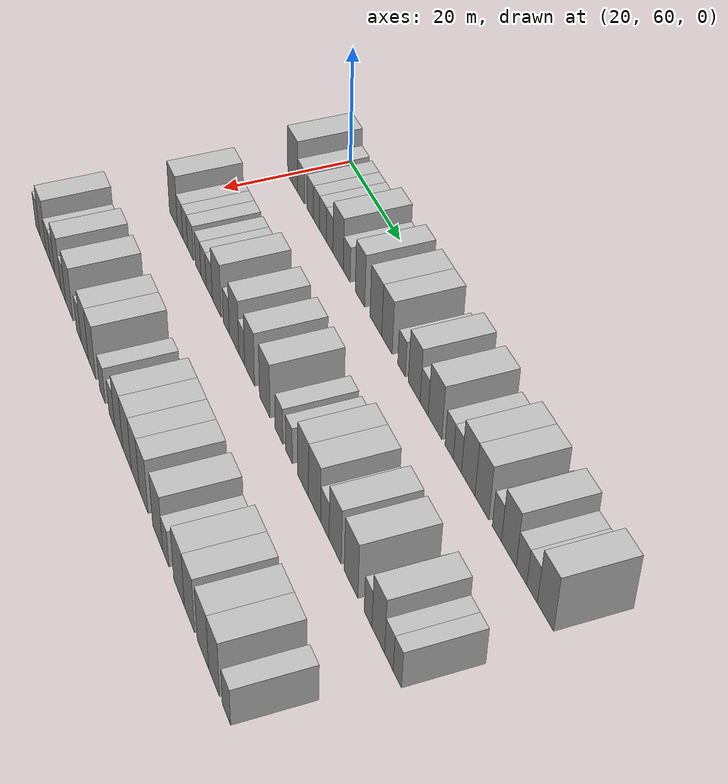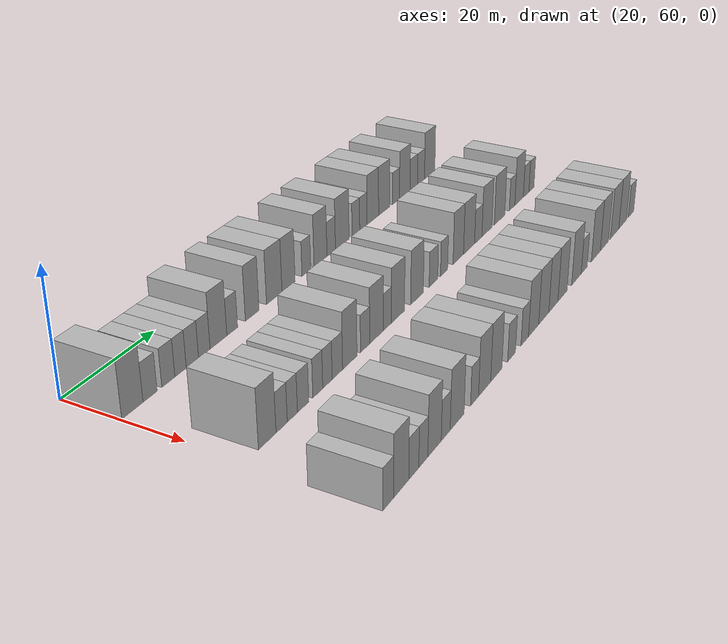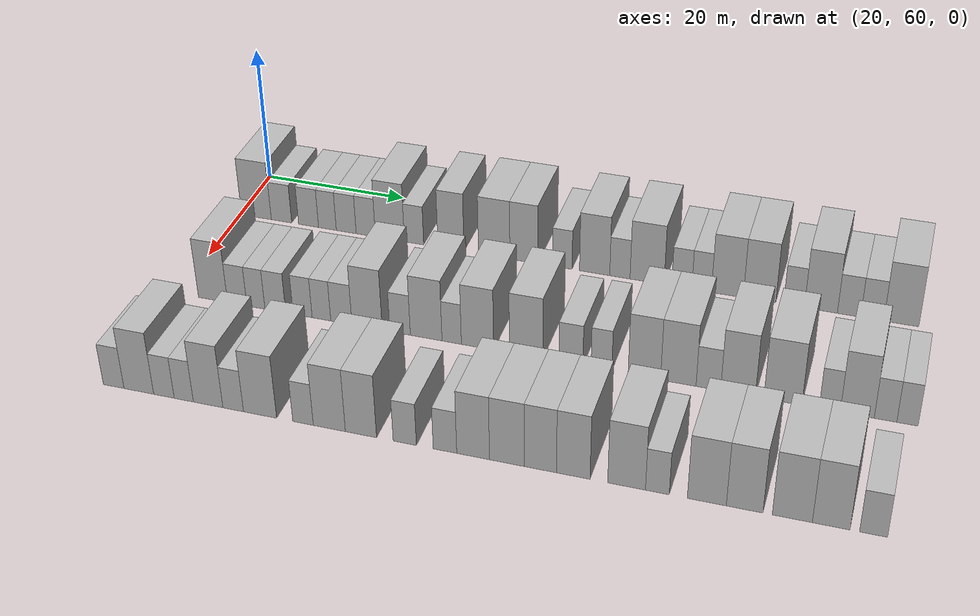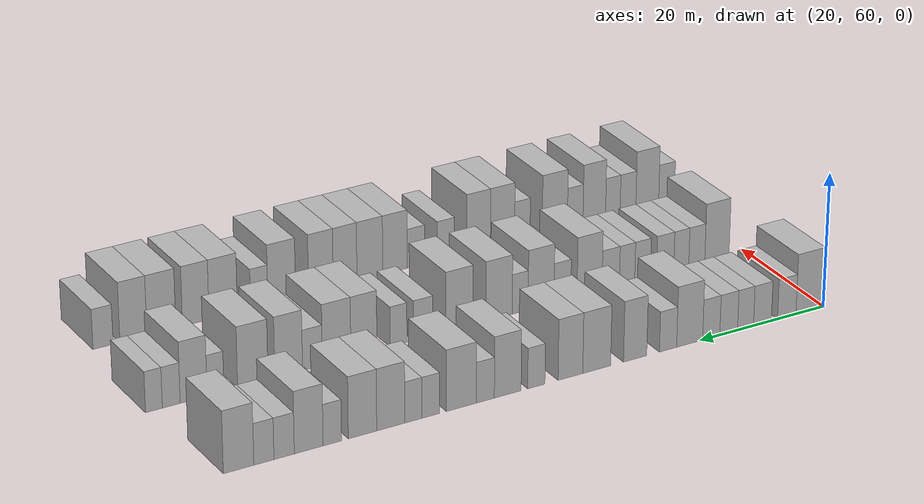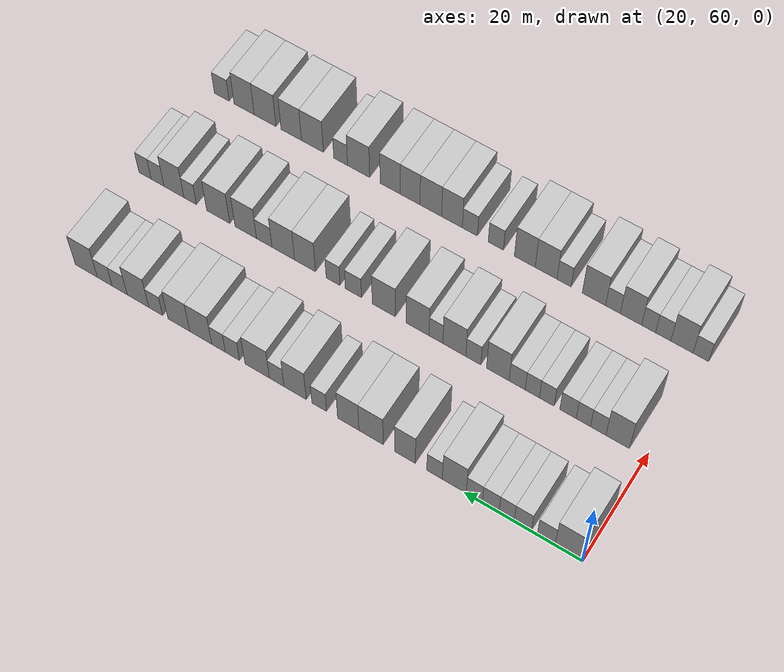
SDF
<sdf version="1.6">
 <world name="default">
  <model name="building_110">
   <static>1</static>
   <pose>25.0000 62.3470 0 0.000000 0.000000 0.000000</pose>
   <link name="link">
    <pose>0 0 4.50 0 0 0</pose>
    <collision name="collision"><geometry><box><size>10.0000 4.3743 9.0000</size></box></geometry></collision>
    <visual name="visual">
     <cast_shadows>0</cast_shadows>
     <geometry><box><size>10.0000 4.3743 9.0000</size></box></geometry>
     <material>
      <script>
       <uri>model://HANNAS_wall/materials/scripts</uri>
       <uri>model://HANNAS_wall/materials/textures</uri>
       <name>vrc/HANNAS_wall</name>
      </script>
     </material>
    </visual>
   </link>
  </model>
  <model name="building_111">
   <static>1</static>
   <pose>25.0000 66.0311 0 0.000000 0.000000 0.000000</pose>
   <link name="link">
    <pose>0 0 3.00 0 0 0</pose>
    <collision name="collision"><geometry><box><size>10.0000 2.9939 6.0000</size></box></geometry></collision>
    <visual name="visual">
     <cast_shadows>0</cast_shadows>
     <geometry><box><size>10.0000 2.9939 6.0000</size></box></geometry>
     <material>
      <script>
       <uri>model://HANNAS_wall/materials/scripts</uri>
       <uri>model://HANNAS_wall/materials/textures</uri>
       <name>vrc/HANNAS_wall</name>
      </script>
     </material>
    </visual>
   </link>
  </model>
  <model name="building_112">
   <static>1</static>
   <pose>25.0000 69.9741 0 0.000000 0.000000 0.000000</pose>
   <link name="link">
    <pose>0 0 3.00 0 0 0</pose>
    <collision name="collision"><geometry><box><size>10.0000 2.8922 6.0000</size></box></geometry></collision>
    <visual name="visual">
     <cast_shadows>0</cast_shadows>
     <geometry><box><size>10.0000 2.8922 6.0000</size></box></geometry>
     <material>
      <script>
       <uri>model://HANNAS_wall/materials/scripts</uri>
       <uri>model://HANNAS_wall/materials/textures</uri>
       <name>vrc/HANNAS_wall</name>
      </script>
     </material>
    </visual>
   </link>
  </model>
  <model name="building_113">
   <static>1</static>
   <pose>25.0000 72.7014 0 0.000000 0.000000 0.000000</pose>
   <link name="link">
    <pose>0 0 3.00 0 0 0</pose>
    <collision name="collision"><geometry><box><size>10.0000 2.5624 6.0000</size></box></geometry></collision>
    <visual name="visual">
     <cast_shadows>0</cast_shadows>
     <geometry><box><size>10.0000 2.5624 6.0000</size></box></geometry>
     <material>
      <script>
       <uri>model://HANNAS_wall/materials/scripts</uri>
       <uri>model://HANNAS_wall/materials/textures</uri>
       <name>vrc/HANNAS_wall</name>
      </script>
     </material>
    </visual>
   </link>
  </model>
  <model name="building_114">
   <static>1</static>
   <pose>25.0000 75.4080 0 0.000000 0.000000 0.000000</pose>
   <link name="link">
    <pose>0 0 3.00 0 0 0</pose>
    <collision name="collision"><geometry><box><size>10.0000 2.8508 6.0000</size></box></geometry></collision>
    <visual name="visual">
     <cast_shadows>0</cast_shadows>
     <geometry><box><size>10.0000 2.8508 6.0000</size></box></geometry>
     <material>
      <script>
       <uri>model://HANNAS_wall/materials/scripts</uri>
       <uri>model://HANNAS_wall/materials/textures</uri>
       <name>vrc/HANNAS_wall</name>
      </script>
     </material>
    </visual>
   </link>
  </model>
  <model name="building_115">
   <static>1</static>
   <pose>25.0000 78.2053 0 0.000000 0.000000 0.000000</pose>
   <link name="link">
    <pose>0 0 3.00 0 0 0</pose>
    <collision name="collision"><geometry><box><size>10.0000 2.7438 6.0000</size></box></geometry></collision>
    <visual name="visual">
     <cast_shadows>0</cast_shadows>
     <geometry><box><size>10.0000 2.7438 6.0000</size></box></geometry>
     <material>
      <script>
       <uri>model://HANNAS_wall/materials/scripts</uri>
       <uri>model://HANNAS_wall/materials/textures</uri>
       <name>vrc/HANNAS_wall</name>
      </script>
     </material>
    </visual>
   </link>
  </model>
  <model name="building_116">
   <static>1</static>
   <pose>25.0000 81.6356 0 0.000000 0.000000 0.000000</pose>
   <link name="link">
    <pose>0 0 4.50 0 0 0</pose>
    <collision name="collision"><geometry><box><size>10.0000 4.1169 9.0000</size></box></geometry></collision>
    <visual name="visual">
     <cast_shadows>0</cast_shadows>
     <geometry><box><size>10.0000 4.1169 9.0000</size></box></geometry>
     <material>
      <script>
       <uri>model://HANNAS_wall/materials/scripts</uri>
       <uri>model://HANNAS_wall/materials/textures</uri>
       <name>vrc/HANNAS_wall</name>
      </script>
     </material>
    </visual>
   </link>
  </model>
  <model name="building_117">
   <static>1</static>
   <pose>25.0000 85.0522 0 0.000000 0.000000 0.000000</pose>
   <link name="link">
    <pose>0 0 3.00 0 0 0</pose>
    <collision name="collision"><geometry><box><size>10.0000 2.7163 6.0000</size></box></geometry></collision>
    <visual name="visual">
     <cast_shadows>0</cast_shadows>
     <geometry><box><size>10.0000 2.7163 6.0000</size></box></geometry>
     <material>
      <script>
       <uri>model://HANNAS_wall/materials/scripts</uri>
       <uri>model://HANNAS_wall/materials/textures</uri>
       <name>vrc/HANNAS_wall</name>
      </script>
     </material>
    </visual>
   </link>
  </model>
  <model name="building_118">
   <static>1</static>
   <pose>25.0000 90.2256 0 0.000000 0.000000 0.000000</pose>
   <link name="link">
    <pose>0 0 4.50 0 0 0</pose>
    <collision name="collision"><geometry><box><size>10.0000 3.6306 9.0000</size></box></geometry></collision>
    <visual name="visual">
     <cast_shadows>0</cast_shadows>
     <geometry><box><size>10.0000 3.6306 9.0000</size></box></geometry>
     <material>
      <script>
       <uri>model://HANNAS_wall/materials/scripts</uri>
       <uri>model://HANNAS_wall/materials/textures</uri>
       <name>vrc/HANNAS_wall</name>
      </script>
     </material>
    </visual>
   </link>
  </model>
  <model name="building_119">
   <static>1</static>
   <pose>25.0000 96.2003 0 0.000000 0.000000 0.000000</pose>
   <link name="link">
    <pose>0 0 4.50 0 0 0</pose>
    <collision name="collision"><geometry><box><size>10.0000 4.3188 9.0000</size></box></geometry></collision>
    <visual name="visual">
     <cast_shadows>0</cast_shadows>
     <geometry><box><size>10.0000 4.3188 9.0000</size></box></geometry>
     <material>
      <script>
       <uri>model://HANNAS_wall/materials/scripts</uri>
       <uri>model://HANNAS_wall/materials/textures</uri>
       <name>vrc/HANNAS_wall</name>
      </script>
     </material>
    </visual>
   </link>
  </model>
  <model name="building_120">
   <static>1</static>
   <pose>25.0000 100.2552 0 0.000000 0.000000 0.000000</pose>
   <link name="link">
    <pose>0 0 4.50 0 0 0</pose>
    <collision name="collision"><geometry><box><size>10.0000 3.7910 9.0000</size></box></geometry></collision>
    <visual name="visual">
     <cast_shadows>0</cast_shadows>
     <geometry><box><size>10.0000 3.7910 9.0000</size></box></geometry>
     <material>
      <script>
       <uri>model://HANNAS_wall/materials/scripts</uri>
       <uri>model://HANNAS_wall/materials/textures</uri>
       <name>vrc/HANNAS_wall</name>
      </script>
     </material>
    </visual>
   </link>
  </model>
  <model name="building_121">
   <static>1</static>
   <pose>25.0000 105.4711 0 0.000000 0.000000 0.000000</pose>
   <link name="link">
    <pose>0 0 3.00 0 0 0</pose>
    <collision name="collision"><geometry><box><size>10.0000 2.6407 6.0000</size></box></geometry></collision>
    <visual name="visual">
     <cast_shadows>0</cast_shadows>
     <geometry><box><size>10.0000 2.6407 6.0000</size></box></geometry>
     <material>
      <script>
       <uri>model://HANNAS_wall/materials/scripts</uri>
       <uri>model://HANNAS_wall/materials/textures</uri>
       <name>vrc/HANNAS_wall</name>
      </script>
     </material>
    </visual>
   </link>
  </model>
  <model name="building_122">
   <static>1</static>
   <pose>25.0000 109.8108 0 0.000000 0.000000 0.000000</pose>
   <link name="link">
    <pose>0 0 4.50 0 0 0</pose>
    <collision name="collision"><geometry><box><size>10.0000 4.0388 9.0000</size></box></geometry></collision>
    <visual name="visual">
     <cast_shadows>0</cast_shadows>
     <geometry><box><size>10.0000 4.0388 9.0000</size></box></geometry>
     <material>
      <script>
       <uri>model://HANNAS_wall/materials/scripts</uri>
       <uri>model://HANNAS_wall/materials/textures</uri>
       <name>vrc/HANNAS_wall</name>
      </script>
     </material>
    </visual>
   </link>
  </model>
  <model name="building_123">
   <static>1</static>
   <pose>25.0000 113.1750 0 0.000000 0.000000 0.000000</pose>
   <link name="link">
    <pose>0 0 3.00 0 0 0</pose>
    <collision name="collision"><geometry><box><size>10.0000 2.6894 6.0000</size></box></geometry></collision>
    <visual name="visual">
     <cast_shadows>0</cast_shadows>
     <geometry><box><size>10.0000 2.6894 6.0000</size></box></geometry>
     <material>
      <script>
       <uri>model://HANNAS_wall/materials/scripts</uri>
       <uri>model://HANNAS_wall/materials/textures</uri>
       <name>vrc/HANNAS_wall</name>
      </script>
     </material>
    </visual>
   </link>
  </model>
  <model name="building_124">
   <static>1</static>
   <pose>25.0000 116.7616 0 0.000000 0.000000 0.000000</pose>
   <link name="link">
    <pose>0 0 4.50 0 0 0</pose>
    <collision name="collision"><geometry><box><size>10.0000 4.4839 9.0000</size></box></geometry></collision>
    <visual name="visual">
     <cast_shadows>0</cast_shadows>
     <geometry><box><size>10.0000 4.4839 9.0000</size></box></geometry>
     <material>
      <script>
       <uri>model://HANNAS_wall/materials/scripts</uri>
       <uri>model://HANNAS_wall/materials/textures</uri>
       <name>vrc/HANNAS_wall</name>
      </script>
     </material>
    </visual>
   </link>
  </model>
  <model name="building_125">
   <static>1</static>
   <pose>25.0000 121.3159 0 0.000000 0.000000 0.000000</pose>
   <link name="link">
    <pose>0 0 3.00 0 0 0</pose>
    <collision name="collision"><geometry><box><size>10.0000 2.6246 6.0000</size></box></geometry></collision>
    <visual name="visual">
     <cast_shadows>0</cast_shadows>
     <geometry><box><size>10.0000 2.6246 6.0000</size></box></geometry>
     <material>
      <script>
       <uri>model://HANNAS_wall/materials/scripts</uri>
       <uri>model://HANNAS_wall/materials/textures</uri>
       <name>vrc/HANNAS_wall</name>
      </script>
     </material>
    </visual>
   </link>
  </model>
  <model name="building_126">
   <static>1</static>
   <pose>25.0000 123.8947 0 0.000000 0.000000 0.000000</pose>
   <link name="link">
    <pose>0 0 3.00 0 0 0</pose>
    <collision name="collision"><geometry><box><size>10.0000 2.5328 6.0000</size></box></geometry></collision>
    <visual name="visual">
     <cast_shadows>0</cast_shadows>
     <geometry><box><size>10.0000 2.5328 6.0000</size></box></geometry>
     <material>
      <script>
       <uri>model://HANNAS_wall/materials/scripts</uri>
       <uri>model://HANNAS_wall/materials/textures</uri>
       <name>vrc/HANNAS_wall</name>
      </script>
     </material>
    </visual>
   </link>
  </model>
  <model name="building_127">
   <static>1</static>
   <pose>25.0000 127.2139 0 0.000000 0.000000 0.000000</pose>
   <link name="link">
    <pose>0 0 4.50 0 0 0</pose>
    <collision name="collision"><geometry><box><size>10.0000 4.1057 9.0000</size></box></geometry></collision>
    <visual name="visual">
     <cast_shadows>0</cast_shadows>
     <geometry><box><size>10.0000 4.1057 9.0000</size></box></geometry>
     <material>
      <script>
       <uri>model://HANNAS_wall/materials/scripts</uri>
       <uri>model://HANNAS_wall/materials/textures</uri>
       <name>vrc/HANNAS_wall</name>
      </script>
     </material>
    </visual>
   </link>
  </model>
  <model name="building_128">
   <static>1</static>
   <pose>25.0000 131.3352 0 0.000000 0.000000 0.000000</pose>
   <link name="link">
    <pose>0 0 4.50 0 0 0</pose>
    <collision name="collision"><geometry><box><size>10.0000 4.1368 9.0000</size></box></geometry></collision>
    <visual name="visual">
     <cast_shadows>0</cast_shadows>
     <geometry><box><size>10.0000 4.1368 9.0000</size></box></geometry>
     <material>
      <script>
       <uri>model://HANNAS_wall/materials/scripts</uri>
       <uri>model://HANNAS_wall/materials/textures</uri>
       <name>vrc/HANNAS_wall</name>
      </script>
     </material>
    </visual>
   </link>
  </model>
  <model name="building_129">
   <static>1</static>
   <pose>25.0000 135.7225 0 0.000000 0.000000 0.000000</pose>
   <link name="link">
    <pose>0 0 3.00 0 0 0</pose>
    <collision name="collision"><geometry><box><size>10.0000 2.6379 6.0000</size></box></geometry></collision>
    <visual name="visual">
     <cast_shadows>0</cast_shadows>
     <geometry><box><size>10.0000 2.6379 6.0000</size></box></geometry>
     <material>
      <script>
       <uri>model://HANNAS_wall/materials/scripts</uri>
       <uri>model://HANNAS_wall/materials/textures</uri>
       <name>vrc/HANNAS_wall</name>
      </script>
     </material>
    </visual>
   </link>
  </model>
  <model name="building_130">
   <static>1</static>
   <pose>25.0000 139.1090 0 0.000000 0.000000 0.000000</pose>
   <link name="link">
    <pose>0 0 4.50 0 0 0</pose>
    <collision name="collision"><geometry><box><size>10.0000 4.1351 9.0000</size></box></geometry></collision>
    <visual name="visual">
     <cast_shadows>0</cast_shadows>
     <geometry><box><size>10.0000 4.1351 9.0000</size></box></geometry>
     <material>
      <script>
       <uri>model://HANNAS_wall/materials/scripts</uri>
       <uri>model://HANNAS_wall/materials/textures</uri>
       <name>vrc/HANNAS_wall</name>
      </script>
     </material>
    </visual>
   </link>
  </model>
  <model name="building_131">
   <static>1</static>
   <pose>25.0000 142.6304 0 0.000000 0.000000 0.000000</pose>
   <link name="link">
    <pose>0 0 3.00 0 0 0</pose>
    <collision name="collision"><geometry><box><size>10.0000 2.9078 6.0000</size></box></geometry></collision>
    <visual name="visual">
     <cast_shadows>0</cast_shadows>
     <geometry><box><size>10.0000 2.9078 6.0000</size></box></geometry>
     <material>
      <script>
       <uri>model://HANNAS_wall/materials/scripts</uri>
       <uri>model://HANNAS_wall/materials/textures</uri>
       <name>vrc/HANNAS_wall</name>
      </script>
     </material>
    </visual>
   </link>
  </model>
  <model name="building_132">
   <static>1</static>
   <pose>25.0000 145.5112 0 0.000000 0.000000 0.000000</pose>
   <link name="link">
    <pose>0 0 3.00 0 0 0</pose>
    <collision name="collision"><geometry><box><size>10.0000 2.8536 6.0000</size></box></geometry></collision>
    <visual name="visual">
     <cast_shadows>0</cast_shadows>
     <geometry><box><size>10.0000 2.8536 6.0000</size></box></geometry>
     <material>
      <script>
       <uri>model://HANNAS_wall/materials/scripts</uri>
       <uri>model://HANNAS_wall/materials/textures</uri>
       <name>vrc/HANNAS_wall</name>
      </script>
     </material>
    </visual>
   </link>
  </model>
  <model name="building_133">
   <static>1</static>
   <pose>25.0000 149.0866 0 0.000000 0.000000 0.000000</pose>
   <link name="link">
    <pose>0 0 4.50 0 0 0</pose>
    <collision name="collision"><geometry><box><size>10.0000 4.2973 9.0000</size></box></geometry></collision>
    <visual name="visual">
     <cast_shadows>0</cast_shadows>
     <geometry><box><size>10.0000 4.2973 9.0000</size></box></geometry>
     <material>
      <script>
       <uri>model://HANNAS_wall/materials/scripts</uri>
       <uri>model://HANNAS_wall/materials/textures</uri>
       <name>vrc/HANNAS_wall</name>
      </script>
     </material>
    </visual>
   </link>
  </model>
  <model name="building_278">
   <static>1</static>
   <pose>44.0000 64.7884 0 0.000000 0.000000 0.000000</pose>
   <link name="link">
    <pose>0 0 4.50 0 0 0</pose>
    <collision name="collision"><geometry><box><size>10.0000 4.0162 9.0000</size></box></geometry></collision>
    <visual name="visual">
     <cast_shadows>0</cast_shadows>
     <geometry><box><size>10.0000 4.0162 9.0000</size></box></geometry>
     <material>
      <script>
       <uri>model://HANNAS_wall/materials/scripts</uri>
       <uri>model://HANNAS_wall/materials/textures</uri>
       <name>vrc/HANNAS_wall</name>
      </script>
     </material>
    </visual>
   </link>
  </model>
  <model name="building_279">
   <static>1</static>
   <pose>44.0000 68.1256 0 0.000000 0.000000 0.000000</pose>
   <link name="link">
    <pose>0 0 3.00 0 0 0</pose>
    <collision name="collision"><geometry><box><size>10.0000 2.6581 6.0000</size></box></geometry></collision>
    <visual name="visual">
     <cast_shadows>0</cast_shadows>
     <geometry><box><size>10.0000 2.6581 6.0000</size></box></geometry>
     <material>
      <script>
       <uri>model://HANNAS_wall/materials/scripts</uri>
       <uri>model://HANNAS_wall/materials/textures</uri>
       <name>vrc/HANNAS_wall</name>
      </script>
     </material>
    </visual>
   </link>
  </model>
  <model name="building_280">
   <static>1</static>
   <pose>44.0000 70.6812 0 0.000000 0.000000 0.000000</pose>
   <link name="link">
    <pose>0 0 3.00 0 0 0</pose>
    <collision name="collision"><geometry><box><size>10.0000 2.4531 6.0000</size></box></geometry></collision>
    <visual name="visual">
     <cast_shadows>0</cast_shadows>
     <geometry><box><size>10.0000 2.4531 6.0000</size></box></geometry>
     <material>
      <script>
       <uri>model://HANNAS_wall/materials/scripts</uri>
       <uri>model://HANNAS_wall/materials/textures</uri>
       <name>vrc/HANNAS_wall</name>
      </script>
     </material>
    </visual>
   </link>
  </model>
  <model name="building_281">
   <static>1</static>
   <pose>44.0000 73.3177 0 0.000000 0.000000 0.000000</pose>
   <link name="link">
    <pose>0 0 3.00 0 0 0</pose>
    <collision name="collision"><geometry><box><size>10.0000 2.8200 6.0000</size></box></geometry></collision>
    <visual name="visual">
     <cast_shadows>0</cast_shadows>
     <geometry><box><size>10.0000 2.8200 6.0000</size></box></geometry>
     <material>
      <script>
       <uri>model://HANNAS_wall/materials/scripts</uri>
       <uri>model://HANNAS_wall/materials/textures</uri>
       <name>vrc/HANNAS_wall</name>
      </script>
     </material>
    </visual>
   </link>
  </model>
  <model name="building_282">
   <static>1</static>
   <pose>44.0000 77.0039 0 0.000000 0.000000 0.000000</pose>
   <link name="link">
    <pose>0 0 3.00 0 0 0</pose>
    <collision name="collision"><geometry><box><size>10.0000 2.5524 6.0000</size></box></geometry></collision>
    <visual name="visual">
     <cast_shadows>0</cast_shadows>
     <geometry><box><size>10.0000 2.5524 6.0000</size></box></geometry>
     <material>
      <script>
       <uri>model://HANNAS_wall/materials/scripts</uri>
       <uri>model://HANNAS_wall/materials/textures</uri>
       <name>vrc/HANNAS_wall</name>
      </script>
     </material>
    </visual>
   </link>
  </model>
  <model name="building_283">
   <static>1</static>
   <pose>44.0000 79.5231 0 0.000000 0.000000 0.000000</pose>
   <link name="link">
    <pose>0 0 3.00 0 0 0</pose>
    <collision name="collision"><geometry><box><size>10.0000 2.4859 6.0000</size></box></geometry></collision>
    <visual name="visual">
     <cast_shadows>0</cast_shadows>
     <geometry><box><size>10.0000 2.4859 6.0000</size></box></geometry>
     <material>
      <script>
       <uri>model://HANNAS_wall/materials/scripts</uri>
       <uri>model://HANNAS_wall/materials/textures</uri>
       <name>vrc/HANNAS_wall</name>
      </script>
     </material>
    </visual>
   </link>
  </model>
  <model name="building_284">
   <static>1</static>
   <pose>44.0000 82.1752 0 0.000000 0.000000 0.000000</pose>
   <link name="link">
    <pose>0 0 3.00 0 0 0</pose>
    <collision name="collision"><geometry><box><size>10.0000 2.8184 6.0000</size></box></geometry></collision>
    <visual name="visual">
     <cast_shadows>0</cast_shadows>
     <geometry><box><size>10.0000 2.8184 6.0000</size></box></geometry>
     <material>
      <script>
       <uri>model://HANNAS_wall/materials/scripts</uri>
       <uri>model://HANNAS_wall/materials/textures</uri>
       <name>vrc/HANNAS_wall</name>
      </script>
     </material>
    </visual>
   </link>
  </model>
  <model name="building_285">
   <static>1</static>
   <pose>44.0000 85.5861 0 0.000000 0.000000 0.000000</pose>
   <link name="link">
    <pose>0 0 4.50 0 0 0</pose>
    <collision name="collision"><geometry><box><size>10.0000 4.0034 9.0000</size></box></geometry></collision>
    <visual name="visual">
     <cast_shadows>0</cast_shadows>
     <geometry><box><size>10.0000 4.0034 9.0000</size></box></geometry>
     <material>
      <script>
       <uri>model://HANNAS_wall/materials/scripts</uri>
       <uri>model://HANNAS_wall/materials/textures</uri>
       <name>vrc/HANNAS_wall</name>
      </script>
     </material>
    </visual>
   </link>
  </model>
  <model name="building_286">
   <static>1</static>
   <pose>44.0000 89.9208 0 0.000000 0.000000 0.000000</pose>
   <link name="link">
    <pose>0 0 3.00 0 0 0</pose>
    <collision name="collision"><geometry><box><size>10.0000 2.6658 6.0000</size></box></geometry></collision>
    <visual name="visual">
     <cast_shadows>0</cast_shadows>
     <geometry><box><size>10.0000 2.6658 6.0000</size></box></geometry>
     <material>
      <script>
       <uri>model://HANNAS_wall/materials/scripts</uri>
       <uri>model://HANNAS_wall/materials/textures</uri>
       <name>vrc/HANNAS_wall</name>
      </script>
     </material>
    </visual>
   </link>
  </model>
  <model name="building_287">
   <static>1</static>
   <pose>44.0000 93.3086 0 0.000000 0.000000 0.000000</pose>
   <link name="link">
    <pose>0 0 4.50 0 0 0</pose>
    <collision name="collision"><geometry><box><size>10.0000 4.1098 9.0000</size></box></geometry></collision>
    <visual name="visual">
     <cast_shadows>0</cast_shadows>
     <geometry><box><size>10.0000 4.1098 9.0000</size></box></geometry>
     <material>
      <script>
       <uri>model://HANNAS_wall/materials/scripts</uri>
       <uri>model://HANNAS_wall/materials/textures</uri>
       <name>vrc/HANNAS_wall</name>
      </script>
     </material>
    </visual>
   </link>
  </model>
  <model name="building_288">
   <static>1</static>
   <pose>44.0000 96.6102 0 0.000000 0.000000 0.000000</pose>
   <link name="link">
    <pose>0 0 3.00 0 0 0</pose>
    <collision name="collision"><geometry><box><size>10.0000 2.4934 6.0000</size></box></geometry></collision>
    <visual name="visual">
     <cast_shadows>0</cast_shadows>
     <geometry><box><size>10.0000 2.4934 6.0000</size></box></geometry>
     <material>
      <script>
       <uri>model://HANNAS_wall/materials/scripts</uri>
       <uri>model://HANNAS_wall/materials/textures</uri>
       <name>vrc/HANNAS_wall</name>
      </script>
     </material>
    </visual>
   </link>
  </model>
  <model name="building_289">
   <static>1</static>
   <pose>44.0000 99.9213 0 0.000000 0.000000 0.000000</pose>
   <link name="link">
    <pose>0 0 4.50 0 0 0</pose>
    <collision name="collision"><geometry><box><size>10.0000 4.1288 9.0000</size></box></geometry></collision>
    <visual name="visual">
     <cast_shadows>0</cast_shadows>
     <geometry><box><size>10.0000 4.1288 9.0000</size></box></geometry>
     <material>
      <script>
       <uri>model://HANNAS_wall/materials/scripts</uri>
       <uri>model://HANNAS_wall/materials/textures</uri>
       <name>vrc/HANNAS_wall</name>
      </script>
     </material>
    </visual>
   </link>
  </model>
  <model name="building_290">
   <static>1</static>
   <pose>44.0000 106.0942 0 0.000000 0.000000 0.000000</pose>
   <link name="link">
    <pose>0 0 4.50 0 0 0</pose>
    <collision name="collision"><geometry><box><size>10.0000 4.2170 9.0000</size></box></geometry></collision>
    <visual name="visual">
     <cast_shadows>0</cast_shadows>
     <geometry><box><size>10.0000 4.2170 9.0000</size></box></geometry>
     <material>
      <script>
       <uri>model://HANNAS_wall/materials/scripts</uri>
       <uri>model://HANNAS_wall/materials/textures</uri>
       <name>vrc/HANNAS_wall</name>
      </script>
     </material>
    </visual>
   </link>
  </model>
  <model name="building_291">
   <static>1</static>
   <pose>44.0000 111.6952 0 0.000000 0.000000 0.000000</pose>
   <link name="link">
    <pose>0 0 3.00 0 0 0</pose>
    <collision name="collision"><geometry><box><size>10.0000 2.9850 6.0000</size></box></geometry></collision>
    <visual name="visual">
     <cast_shadows>0</cast_shadows>
     <geometry><box><size>10.0000 2.9850 6.0000</size></box></geometry>
     <material>
      <script>
       <uri>model://HANNAS_wall/materials/scripts</uri>
       <uri>model://HANNAS_wall/materials/textures</uri>
       <name>vrc/HANNAS_wall</name>
      </script>
     </material>
    </visual>
   </link>
  </model>
  <model name="building_292">
   <static>1</static>
   <pose>44.0000 115.4698 0 0.000000 0.000000 0.000000</pose>
   <link name="link">
    <pose>0 0 3.00 0 0 0</pose>
    <collision name="collision"><geometry><box><size>10.0000 2.5641 6.0000</size></box></geometry></collision>
    <visual name="visual">
     <cast_shadows>0</cast_shadows>
     <geometry><box><size>10.0000 2.5641 6.0000</size></box></geometry>
     <material>
      <script>
       <uri>model://HANNAS_wall/materials/scripts</uri>
       <uri>model://HANNAS_wall/materials/textures</uri>
       <name>vrc/HANNAS_wall</name>
      </script>
     </material>
    </visual>
   </link>
  </model>
  <model name="building_293">
   <static>1</static>
   <pose>44.0000 120.7250 0 0.000000 0.000000 0.000000</pose>
   <link name="link">
    <pose>0 0 4.50 0 0 0</pose>
    <collision name="collision"><geometry><box><size>10.0000 3.9463 9.0000</size></box></geometry></collision>
    <visual name="visual">
     <cast_shadows>0</cast_shadows>
     <geometry><box><size>10.0000 3.9463 9.0000</size></box></geometry>
     <material>
      <script>
       <uri>model://HANNAS_wall/materials/scripts</uri>
       <uri>model://HANNAS_wall/materials/textures</uri>
       <name>vrc/HANNAS_wall</name>
      </script>
     </material>
    </visual>
   </link>
  </model>
  <model name="building_294">
   <static>1</static>
   <pose>44.0000 124.8401 0 0.000000 0.000000 0.000000</pose>
   <link name="link">
    <pose>0 0 4.50 0 0 0</pose>
    <collision name="collision"><geometry><box><size>10.0000 4.2840 9.0000</size></box></geometry></collision>
    <visual name="visual">
     <cast_shadows>0</cast_shadows>
     <geometry><box><size>10.0000 4.2840 9.0000</size></box></geometry>
     <material>
      <script>
       <uri>model://HANNAS_wall/materials/scripts</uri>
       <uri>model://HANNAS_wall/materials/textures</uri>
       <name>vrc/HANNAS_wall</name>
      </script>
     </material>
    </visual>
   </link>
  </model>
  <model name="building_295">
   <static>1</static>
   <pose>44.0000 128.4541 0 0.000000 0.000000 0.000000</pose>
   <link name="link">
    <pose>0 0 3.00 0 0 0</pose>
    <collision name="collision"><geometry><box><size>10.0000 2.9439 6.0000</size></box></geometry></collision>
    <visual name="visual">
     <cast_shadows>0</cast_shadows>
     <geometry><box><size>10.0000 2.9439 6.0000</size></box></geometry>
     <material>
      <script>
       <uri>model://HANNAS_wall/materials/scripts</uri>
       <uri>model://HANNAS_wall/materials/textures</uri>
       <name>vrc/HANNAS_wall</name>
      </script>
     </material>
    </visual>
   </link>
  </model>
  <model name="building_296">
   <static>1</static>
   <pose>44.0000 131.9836 0 0.000000 0.000000 0.000000</pose>
   <link name="link">
    <pose>0 0 4.50 0 0 0</pose>
    <collision name="collision"><geometry><box><size>10.0000 4.1151 9.0000</size></box></geometry></collision>
    <visual name="visual">
     <cast_shadows>0</cast_shadows>
     <geometry><box><size>10.0000 4.1151 9.0000</size></box></geometry>
     <material>
      <script>
       <uri>model://HANNAS_wall/materials/scripts</uri>
       <uri>model://HANNAS_wall/materials/textures</uri>
       <name>vrc/HANNAS_wall</name>
      </script>
     </material>
    </visual>
   </link>
  </model>
  <model name="building_297">
   <static>1</static>
   <pose>44.0000 137.2767 0 0.000000 0.000000 0.000000</pose>
   <link name="link">
    <pose>0 0 4.50 0 0 0</pose>
    <collision name="collision"><geometry><box><size>10.0000 4.4711 9.0000</size></box></geometry></collision>
    <visual name="visual">
     <cast_shadows>0</cast_shadows>
     <geometry><box><size>10.0000 4.4711 9.0000</size></box></geometry>
     <material>
      <script>
       <uri>model://HANNAS_wall/materials/scripts</uri>
       <uri>model://HANNAS_wall/materials/textures</uri>
       <name>vrc/HANNAS_wall</name>
      </script>
     </material>
    </visual>
   </link>
  </model>
  <model name="building_298">
   <static>1</static>
   <pose>44.0000 142.7341 0 0.000000 0.000000 0.000000</pose>
   <link name="link">
    <pose>0 0 3.00 0 0 0</pose>
    <collision name="collision"><geometry><box><size>10.0000 2.4436 6.0000</size></box></geometry></collision>
    <visual name="visual">
     <cast_shadows>0</cast_shadows>
     <geometry><box><size>10.0000 2.4436 6.0000</size></box></geometry>
     <material>
      <script>
       <uri>model://HANNAS_wall/materials/scripts</uri>
       <uri>model://HANNAS_wall/materials/textures</uri>
       <name>vrc/HANNAS_wall</name>
      </script>
     </material>
    </visual>
   </link>
  </model>
  <model name="building_299">
   <static>1</static>
   <pose>44.0000 145.9047 0 0.000000 0.000000 0.000000</pose>
   <link name="link">
    <pose>0 0 4.50 0 0 0</pose>
    <collision name="collision"><geometry><box><size>10.0000 3.8978 9.0000</size></box></geometry></collision>
    <visual name="visual">
     <cast_shadows>0</cast_shadows>
     <geometry><box><size>10.0000 3.8978 9.0000</size></box></geometry>
     <material>
      <script>
       <uri>model://HANNAS_wall/materials/scripts</uri>
       <uri>model://HANNAS_wall/materials/textures</uri>
       <name>vrc/HANNAS_wall</name>
      </script>
     </material>
    </visual>
   </link>
  </model>
  <model name="building_300">
   <static>1</static>
   <pose>44.0000 149.1403 0 0.000000 0.000000 0.000000</pose>
   <link name="link">
    <pose>0 0 3.00 0 0 0</pose>
    <collision name="collision"><geometry><box><size>10.0000 2.5735 6.0000</size></box></geometry></collision>
    <visual name="visual">
     <cast_shadows>0</cast_shadows>
     <geometry><box><size>10.0000 2.5735 6.0000</size></box></geometry>
     <material>
      <script>
       <uri>model://HANNAS_wall/materials/scripts</uri>
       <uri>model://HANNAS_wall/materials/textures</uri>
       <name>vrc/HANNAS_wall</name>
      </script>
     </material>
    </visual>
   </link>
  </model>
  <model name="building_301">
   <static>1</static>
   <pose>44.0000 151.6347 0 0.000000 0.000000 0.000000</pose>
   <link name="link">
    <pose>0 0 3.00 0 0 0</pose>
    <collision name="collision"><geometry><box><size>10.0000 2.4152 6.0000</size></box></geometry></collision>
    <visual name="visual">
     <cast_shadows>0</cast_shadows>
     <geometry><box><size>10.0000 2.4152 6.0000</size></box></geometry>
     <material>
      <script>
       <uri>model://HANNAS_wall/materials/scripts</uri>
       <uri>model://HANNAS_wall/materials/textures</uri>
       <name>vrc/HANNAS_wall</name>
      </script>
     </material>
    </visual>
   </link>
  </model>
  <model name="building_454">
   <static>1</static>
   <pose>63.0000 60.8909 0 0.000000 0.000000 0.000000</pose>
   <link name="link">
    <pose>0 0 3.00 0 0 0</pose>
    <collision name="collision"><geometry><box><size>10.0000 2.6972 6.0000</size></box></geometry></collision>
    <visual name="visual">
     <cast_shadows>0</cast_shadows>
     <geometry><box><size>10.0000 2.6972 6.0000</size></box></geometry>
     <material>
      <script>
       <uri>model://HANNAS_wall/materials/scripts</uri>
       <uri>model://HANNAS_wall/materials/textures</uri>
       <name>vrc/HANNAS_wall</name>
      </script>
     </material>
    </visual>
   </link>
  </model>
  <model name="building_455">
   <static>1</static>
   <pose>63.0000 64.1638 0 0.000000 0.000000 0.000000</pose>
   <link name="link">
    <pose>0 0 4.50 0 0 0</pose>
    <collision name="collision"><geometry><box><size>10.0000 3.8485 9.0000</size></box></geometry></collision>
    <visual name="visual">
     <cast_shadows>0</cast_shadows>
     <geometry><box><size>10.0000 3.8485 9.0000</size></box></geometry>
     <material>
      <script>
       <uri>model://HANNAS_wall/materials/scripts</uri>
       <uri>model://HANNAS_wall/materials/textures</uri>
       <name>vrc/HANNAS_wall</name>
      </script>
     </material>
    </visual>
   </link>
  </model>
  <model name="building_456">
   <static>1</static>
   <pose>63.0000 67.4076 0 0.000000 0.000000 0.000000</pose>
   <link name="link">
    <pose>0 0 3.00 0 0 0</pose>
    <collision name="collision"><geometry><box><size>10.0000 2.6392 6.0000</size></box></geometry></collision>
    <visual name="visual">
     <cast_shadows>0</cast_shadows>
     <geometry><box><size>10.0000 2.6392 6.0000</size></box></geometry>
     <material>
      <script>
       <uri>model://HANNAS_wall/materials/scripts</uri>
       <uri>model://HANNAS_wall/materials/textures</uri>
       <name>vrc/HANNAS_wall</name>
      </script>
     </material>
    </visual>
   </link>
  </model>
  <model name="building_457">
   <static>1</static>
   <pose>63.0000 69.9543 0 0.000000 0.000000 0.000000</pose>
   <link name="link">
    <pose>0 0 3.00 0 0 0</pose>
    <collision name="collision"><geometry><box><size>10.0000 2.4542 6.0000</size></box></geometry></collision>
    <visual name="visual">
     <cast_shadows>0</cast_shadows>
     <geometry><box><size>10.0000 2.4542 6.0000</size></box></geometry>
     <material>
      <script>
       <uri>model://HANNAS_wall/materials/scripts</uri>
       <uri>model://HANNAS_wall/materials/textures</uri>
       <name>vrc/HANNAS_wall</name>
      </script>
     </material>
    </visual>
   </link>
  </model>
  <model name="building_458">
   <static>1</static>
   <pose>63.0000 73.0583 0 0.000000 0.000000 0.000000</pose>
   <link name="link">
    <pose>0 0 4.50 0 0 0</pose>
    <collision name="collision"><geometry><box><size>10.0000 3.7539 9.0000</size></box></geometry></collision>
    <visual name="visual">
     <cast_shadows>0</cast_shadows>
     <geometry><box><size>10.0000 3.7539 9.0000</size></box></geometry>
     <material>
      <script>
       <uri>model://HANNAS_wall/materials/scripts</uri>
       <uri>model://HANNAS_wall/materials/textures</uri>
       <name>vrc/HANNAS_wall</name>
      </script>
     </material>
    </visual>
   </link>
  </model>
  <model name="building_459">
   <static>1</static>
   <pose>63.0000 76.2322 0 0.000000 0.000000 0.000000</pose>
   <link name="link">
    <pose>0 0 3.00 0 0 0</pose>
    <collision name="collision"><geometry><box><size>10.0000 2.5938 6.0000</size></box></geometry></collision>
    <visual name="visual">
     <cast_shadows>0</cast_shadows>
     <geometry><box><size>10.0000 2.5938 6.0000</size></box></geometry>
     <material>
      <script>
       <uri>model://HANNAS_wall/materials/scripts</uri>
       <uri>model://HANNAS_wall/materials/textures</uri>
       <name>vrc/HANNAS_wall</name>
      </script>
     </material>
    </visual>
   </link>
  </model>
  <model name="building_460">
   <static>1</static>
   <pose>63.0000 79.6026 0 0.000000 0.000000 0.000000</pose>
   <link name="link">
    <pose>0 0 4.50 0 0 0</pose>
    <collision name="collision"><geometry><box><size>10.0000 4.1470 9.0000</size></box></geometry></collision>
    <visual name="visual">
     <cast_shadows>0</cast_shadows>
     <geometry><box><size>10.0000 4.1470 9.0000</size></box></geometry>
     <material>
      <script>
       <uri>model://HANNAS_wall/materials/scripts</uri>
       <uri>model://HANNAS_wall/materials/textures</uri>
       <name>vrc/HANNAS_wall</name>
      </script>
     </material>
    </visual>
   </link>
  </model>
  <model name="building_461">
   <static>1</static>
   <pose>63.0000 84.9404 0 0.000000 0.000000 0.000000</pose>
   <link name="link">
    <pose>0 0 3.00 0 0 0</pose>
    <collision name="collision"><geometry><box><size>10.0000 2.5288 6.0000</size></box></geometry></collision>
    <visual name="visual">
     <cast_shadows>0</cast_shadows>
     <geometry><box><size>10.0000 2.5288 6.0000</size></box></geometry>
     <material>
      <script>
       <uri>model://HANNAS_wall/materials/scripts</uri>
       <uri>model://HANNAS_wall/materials/textures</uri>
       <name>vrc/HANNAS_wall</name>
      </script>
     </material>
    </visual>
   </link>
  </model>
  <model name="building_462">
   <static>1</static>
   <pose>63.0000 88.1725 0 0.000000 0.000000 0.000000</pose>
   <link name="link">
    <pose>0 0 4.50 0 0 0</pose>
    <collision name="collision"><geometry><box><size>10.0000 3.9354 9.0000</size></box></geometry></collision>
    <visual name="visual">
     <cast_shadows>0</cast_shadows>
     <geometry><box><size>10.0000 3.9354 9.0000</size></box></geometry>
     <material>
      <script>
       <uri>model://HANNAS_wall/materials/scripts</uri>
       <uri>model://HANNAS_wall/materials/textures</uri>
       <name>vrc/HANNAS_wall</name>
      </script>
     </material>
    </visual>
   </link>
  </model>
  <model name="building_463">
   <static>1</static>
   <pose>63.0000 92.0348 0 0.000000 0.000000 0.000000</pose>
   <link name="link">
    <pose>0 0 4.50 0 0 0</pose>
    <collision name="collision"><geometry><box><size>10.0000 3.7891 9.0000</size></box></geometry></collision>
    <visual name="visual">
     <cast_shadows>0</cast_shadows>
     <geometry><box><size>10.0000 3.7891 9.0000</size></box></geometry>
     <material>
      <script>
       <uri>model://HANNAS_wall/materials/scripts</uri>
       <uri>model://HANNAS_wall/materials/textures</uri>
       <name>vrc/HANNAS_wall</name>
      </script>
     </material>
    </visual>
   </link>
  </model>
  <model name="building_464">
   <static>1</static>
   <pose>63.0000 97.3218 0 0.000000 0.000000 0.000000</pose>
   <link name="link">
    <pose>0 0 3.00 0 0 0</pose>
    <collision name="collision"><geometry><box><size>10.0000 2.7850 6.0000</size></box></geometry></collision>
    <visual name="visual">
     <cast_shadows>0</cast_shadows>
     <geometry><box><size>10.0000 2.7850 6.0000</size></box></geometry>
     <material>
      <script>
       <uri>model://HANNAS_wall/materials/scripts</uri>
       <uri>model://HANNAS_wall/materials/textures</uri>
       <name>vrc/HANNAS_wall</name>
      </script>
     </material>
    </visual>
   </link>
  </model>
  <model name="building_465">
   <static>1</static>
   <pose>63.0000 102.1062 0 0.000000 0.000000 0.000000</pose>
   <link name="link">
    <pose>0 0 3.00 0 0 0</pose>
    <collision name="collision"><geometry><box><size>10.0000 2.7838 6.0000</size></box></geometry></collision>
    <visual name="visual">
     <cast_shadows>0</cast_shadows>
     <geometry><box><size>10.0000 2.7838 6.0000</size></box></geometry>
     <material>
      <script>
       <uri>model://HANNAS_wall/materials/scripts</uri>
       <uri>model://HANNAS_wall/materials/textures</uri>
       <name>vrc/HANNAS_wall</name>
      </script>
     </material>
    </visual>
   </link>
  </model>
  <model name="building_466">
   <static>1</static>
   <pose>63.0000 105.4249 0 0.000000 0.000000 0.000000</pose>
   <link name="link">
    <pose>0 0 4.50 0 0 0</pose>
    <collision name="collision"><geometry><box><size>10.0000 3.8534 9.0000</size></box></geometry></collision>
    <visual name="visual">
     <cast_shadows>0</cast_shadows>
     <geometry><box><size>10.0000 3.8534 9.0000</size></box></geometry>
     <material>
      <script>
       <uri>model://HANNAS_wall/materials/scripts</uri>
       <uri>model://HANNAS_wall/materials/textures</uri>
       <name>vrc/HANNAS_wall</name>
      </script>
     </material>
    </visual>
   </link>
  </model>
  <model name="building_467">
   <static>1</static>
   <pose>63.0000 109.3685 0 0.000000 0.000000 0.000000</pose>
   <link name="link">
    <pose>0 0 4.50 0 0 0</pose>
    <collision name="collision"><geometry><box><size>10.0000 4.0338 9.0000</size></box></geometry></collision>
    <visual name="visual">
     <cast_shadows>0</cast_shadows>
     <geometry><box><size>10.0000 4.0338 9.0000</size></box></geometry>
     <material>
      <script>
       <uri>model://HANNAS_wall/materials/scripts</uri>
       <uri>model://HANNAS_wall/materials/textures</uri>
       <name>vrc/HANNAS_wall</name>
      </script>
     </material>
    </visual>
   </link>
  </model>
  <model name="building_468">
   <static>1</static>
   <pose>63.0000 113.2432 0 0.000000 0.000000 0.000000</pose>
   <link name="link">
    <pose>0 0 4.50 0 0 0</pose>
    <collision name="collision"><geometry><box><size>10.0000 3.7158 9.0000</size></box></geometry></collision>
    <visual name="visual">
     <cast_shadows>0</cast_shadows>
     <geometry><box><size>10.0000 3.7158 9.0000</size></box></geometry>
     <material>
      <script>
       <uri>model://HANNAS_wall/materials/scripts</uri>
       <uri>model://HANNAS_wall/materials/textures</uri>
       <name>vrc/HANNAS_wall</name>
      </script>
     </material>
    </visual>
   </link>
  </model>
  <model name="building_469">
   <static>1</static>
   <pose>63.0000 117.0169 0 0.000000 0.000000 0.000000</pose>
   <link name="link">
    <pose>0 0 4.50 0 0 0</pose>
    <collision name="collision"><geometry><box><size>10.0000 3.8314 9.0000</size></box></geometry></collision>
    <visual name="visual">
     <cast_shadows>0</cast_shadows>
     <geometry><box><size>10.0000 3.8314 9.0000</size></box></geometry>
     <material>
      <script>
       <uri>model://HANNAS_wall/materials/scripts</uri>
       <uri>model://HANNAS_wall/materials/textures</uri>
       <name>vrc/HANNAS_wall</name>
      </script>
     </material>
    </visual>
   </link>
  </model>
  <model name="building_470">
   <static>1</static>
   <pose>63.0000 123.0546 0 0.000000 0.000000 0.000000</pose>
   <link name="link">
    <pose>0 0 4.50 0 0 0</pose>
    <collision name="collision"><geometry><box><size>10.0000 4.2440 9.0000</size></box></geometry></collision>
    <visual name="visual">
     <cast_shadows>0</cast_shadows>
     <geometry><box><size>10.0000 4.2440 9.0000</size></box></geometry>
     <material>
      <script>
       <uri>model://HANNAS_wall/materials/scripts</uri>
       <uri>model://HANNAS_wall/materials/textures</uri>
       <name>vrc/HANNAS_wall</name>
      </script>
     </material>
    </visual>
   </link>
  </model>
  <model name="building_471">
   <static>1</static>
   <pose>63.0000 126.5046 0 0.000000 0.000000 0.000000</pose>
   <link name="link">
    <pose>0 0 3.00 0 0 0</pose>
    <collision name="collision"><geometry><box><size>10.0000 2.6560 6.0000</size></box></geometry></collision>
    <visual name="visual">
     <cast_shadows>0</cast_shadows>
     <geometry><box><size>10.0000 2.6560 6.0000</size></box></geometry>
     <material>
      <script>
       <uri>model://HANNAS_wall/materials/scripts</uri>
       <uri>model://HANNAS_wall/materials/textures</uri>
       <name>vrc/HANNAS_wall</name>
      </script>
     </material>
    </visual>
   </link>
  </model>
  <model name="building_472">
   <static>1</static>
   <pose>63.0000 131.9727 0 0.000000 0.000000 0.000000</pose>
   <link name="link">
    <pose>0 0 4.50 0 0 0</pose>
    <collision name="collision"><geometry><box><size>10.0000 4.2802 9.0000</size></box></geometry></collision>
    <visual name="visual">
     <cast_shadows>0</cast_shadows>
     <geometry><box><size>10.0000 4.2802 9.0000</size></box></geometry>
     <material>
      <script>
       <uri>model://HANNAS_wall/materials/scripts</uri>
       <uri>model://HANNAS_wall/materials/textures</uri>
       <name>vrc/HANNAS_wall</name>
      </script>
     </material>
    </visual>
   </link>
  </model>
  <model name="building_473">
   <static>1</static>
   <pose>63.0000 136.1088 0 0.000000 0.000000 0.000000</pose>
   <link name="link">
    <pose>0 0 4.50 0 0 0</pose>
    <collision name="collision"><geometry><box><size>10.0000 3.9920 9.0000</size></box></geometry></collision>
    <visual name="visual">
     <cast_shadows>0</cast_shadows>
     <geometry><box><size>10.0000 3.9920 9.0000</size></box></geometry>
     <material>
      <script>
       <uri>model://HANNAS_wall/materials/scripts</uri>
       <uri>model://HANNAS_wall/materials/textures</uri>
       <name>vrc/HANNAS_wall</name>
      </script>
     </material>
    </visual>
   </link>
  </model>
  <model name="building_474">
   <static>1</static>
   <pose>63.0000 141.2593 0 0.000000 0.000000 0.000000</pose>
   <link name="link">
    <pose>0 0 4.50 0 0 0</pose>
    <collision name="collision"><geometry><box><size>10.0000 4.3089 9.0000</size></box></geometry></collision>
    <visual name="visual">
     <cast_shadows>0</cast_shadows>
     <geometry><box><size>10.0000 4.3089 9.0000</size></box></geometry>
     <material>
      <script>
       <uri>model://HANNAS_wall/materials/scripts</uri>
       <uri>model://HANNAS_wall/materials/textures</uri>
       <name>vrc/HANNAS_wall</name>
      </script>
     </material>
    </visual>
   </link>
  </model>
  <model name="building_475">
   <static>1</static>
   <pose>63.0000 145.4145 0 0.000000 0.000000 0.000000</pose>
   <link name="link">
    <pose>0 0 4.50 0 0 0</pose>
    <collision name="collision"><geometry><box><size>10.0000 4.0016 9.0000</size></box></geometry></collision>
    <visual name="visual">
     <cast_shadows>0</cast_shadows>
     <geometry><box><size>10.0000 4.0016 9.0000</size></box></geometry>
     <material>
      <script>
       <uri>model://HANNAS_wall/materials/scripts</uri>
       <uri>model://HANNAS_wall/materials/textures</uri>
       <name>vrc/HANNAS_wall</name>
      </script>
     </material>
    </visual>
   </link>
  </model>
  <model name="building_476">
   <static>1</static>
   <pose>63.0000 149.8912 0 0.000000 0.000000 0.000000</pose>
   <link name="link">
    <pose>0 0 3.00 0 0 0</pose>
    <collision name="collision"><geometry><box><size>10.0000 2.9518 6.0000</size></box></geometry></collision>
    <visual name="visual">
     <cast_shadows>0</cast_shadows>
     <geometry><box><size>10.0000 2.9518 6.0000</size></box></geometry>
     <material>
      <script>
       <uri>model://HANNAS_wall/materials/scripts</uri>
       <uri>model://HANNAS_wall/materials/textures</uri>
       <name>vrc/HANNAS_wall</name>
      </script>
     </material>
    </visual>
   </link>
  </model>
 </world>
</sdf>
